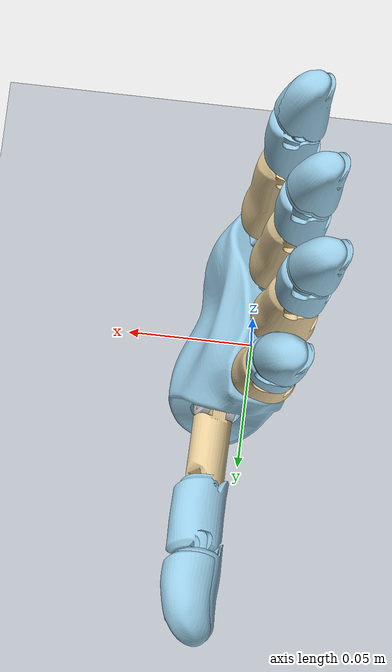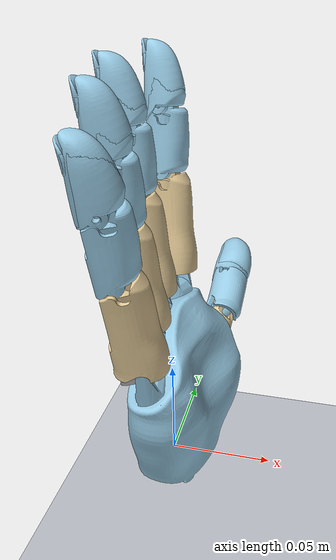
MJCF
<mujoco model="wujihand-right-reach">
  <compiler angle="radian" meshdir="../meshes/right/" />

  <option jacobian="sparse" integrator="RK4" timestep="0.002" solver="Newton" iterations="50" tolerance="1e-10" />
  <visual>
    <global offwidth="1280" offheight="720" />
    <quality offsamples="4" shadowsize="4096" />
    <headlight ambient="0.34 0.34 0.36" diffuse="0.58 0.58 0.58" specular="0.06 0.06 0.06" />
    <map znear="0.01" zfar="20" />
  </visual><default><joint armature="0.0002" damping="0.0" /></default><asset>
    <texture name="reach_sky" type="skybox" builtin="gradient"
             rgb1="0.72 0.80 0.90" rgb2="0.97 0.97 0.98"
             width="512" height="3072" />
    <texture name="reach_floor" type="2d" builtin="checker"
             rgb1="0.70 0.72 0.75" rgb2="0.78 0.80 0.83" width="512" height="512" />
    <material name="reach_floor_mat" texture="reach_floor" texrepeat="18 18"
              specular="0.05" shininess="0.05" reflectance="0.0" />
    <mesh name="right_palm_link" content_type="model/stl" file="right_palm_link.STL" />
    <mesh name="right_finger1_link1" content_type="model/stl" file="right_finger1_link1.STL" />
    <mesh name="right_finger1_link2" content_type="model/stl" file="right_finger1_link2.STL" />
    <mesh name="right_finger1_link3" content_type="model/stl" file="right_finger1_link3.STL" />
    <mesh name="right_finger1_link4" content_type="model/stl" file="right_finger1_link4.STL" />
    <mesh name="right_finger1_tip_link" content_type="model/stl" file="right_finger1_tip_link.STL" />
    <mesh name="right_finger2_link1" content_type="model/stl" file="right_finger2_link1.STL" />
    <mesh name="right_finger2_link2" content_type="model/stl" file="right_finger2_link2.STL" />
    <mesh name="right_finger2_link3" content_type="model/stl" file="right_finger2_link3.STL" />
    <mesh name="right_finger2_link4" content_type="model/stl" file="right_finger2_link4.STL" />
    <mesh name="right_finger2_tip_link" content_type="model/stl" file="right_finger2_tip_link.STL" />
    <mesh name="right_finger3_link1" content_type="model/stl" file="right_finger3_link1.STL" />
    <mesh name="right_finger3_link2" content_type="model/stl" file="right_finger3_link2.STL" />
    <mesh name="right_finger3_link3" content_type="model/stl" file="right_finger3_link3.STL" />
    <mesh name="right_finger3_link4" content_type="model/stl" file="right_finger3_link4.STL" />
    <mesh name="right_finger3_tip_link" content_type="model/stl" file="right_finger3_tip_link.STL" />
    <mesh name="right_finger4_link1" content_type="model/stl" file="right_finger4_link1.STL" />
    <mesh name="right_finger4_link2" content_type="model/stl" file="right_finger4_link2.STL" />
    <mesh name="right_finger4_link3" content_type="model/stl" file="right_finger4_link3.STL" />
    <mesh name="right_finger4_link4" content_type="model/stl" file="right_finger4_link4.STL" />
    <mesh name="right_finger4_tip_link" content_type="model/stl" file="right_finger4_tip_link.STL" />
    <mesh name="right_finger5_link1" content_type="model/stl" file="right_finger5_link1.STL" />
    <mesh name="right_finger5_link2" content_type="model/stl" file="right_finger5_link2.STL" />
    <mesh name="right_finger5_link3" content_type="model/stl" file="right_finger5_link3.STL" />
    <mesh name="right_finger5_link4" content_type="model/stl" file="right_finger5_link4.STL" />
    <mesh name="right_finger5_tip_link" content_type="model/stl" file="right_finger5_tip_link.STL" />
  </asset>

  <worldbody>
    <!-- Visual-only floor pad: contype/conaffinity 0, so it is invisible to
         collision detection and cannot perturb a reach trajectory. -->
    <geom name="reach_floor_visual" type="plane" pos="0 0 -0.12" size="0.6 0.6 0.01"
          material="reach_floor_mat" contype="0" conaffinity="0" group="0" />
    <light name="reach_key" pos="0.35 -0.30 0.60" dir="-0.45 0.40 -0.80"
           diffuse="0.55 0.55 0.55" specular="0.10 0.10 0.10" castshadow="true" />
    <light name="reach_fill" pos="-0.40 0.35 0.45" dir="0.55 -0.45 -0.70"
           diffuse="0.28 0.28 0.30" specular="0.02 0.02 0.02" castshadow="false" />
    <body name="right_palm_link"><inertial pos="-0.00297947143114252 0.000455717622711663 0.0366540864104669" mass="0.16914" quat="-0.01772809 -0.04274722 0.09308295 0.99458230" diaginertia="1.40677446e-04 9.58896475e-05 5.81329061e-05" /><geom type="mesh" contype="0" conaffinity="0" group="1" density="0" rgba="0.6 0.8 0.9 1" mesh="right_palm_link" />
    <geom type="mesh" rgba="0.6 0.8 0.9 1" mesh="right_palm_link" contype="1" conaffinity="1" />
    <body name="right_finger1_link1" pos="0.0084399 0.020587 0.028893" quat="0.682219 -0.617669 0.0805047 -0.382859">
      <inertial pos="-0.00246282 -0.00124281 0.00778015" quat="0.904243 0.21652 0.0443878 -0.365368" mass="0.0075" diaginertia="3.37599e-07 3.01198e-07 2.11203e-07" />
      <joint name="right_finger1_joint1" pos="0 0 0" axis="0 1 0" range="0.0475 1.6033" actuatorfrcrange="-0.4452 0.4452" armature="0.0005" />
      <geom type="mesh" contype="0" conaffinity="0" group="1" density="0" rgba="0.7 0.7 0.7 1" mesh="right_finger1_link1" />
      <geom type="mesh" rgba="0.7 0.7 0.7 1" mesh="right_finger1_link1" contype="0" conaffinity="0" />
      <body name="right_finger1_link2" pos="-0.0047549 -0.0058191 0.014132" quat="0.726252 0.290851 -0.0855912 -0.616958">
        <inertial pos="-0.00116283 1.22067e-05 0.0156645" quat="0.815906 0.0024483 -0.00462559 0.57816" mass="0.0248" diaginertia="2.81725e-06 2.75299e-06 6.79766e-07" />
        <joint name="right_finger1_joint2" pos="0 0 0" axis="0 1 0" range="-0.1387 0.9324" actuatorfrcrange="-0.4259 0.4259" armature="0.0005" />
        <geom type="mesh" contype="0" conaffinity="0" group="1" density="0" rgba="0.9 0.8 0.6 1" mesh="right_finger1_link2" />
        <geom type="mesh" rgba="0.9 0.8 0.6 1" mesh="right_finger1_link2" contype="2" conaffinity="2" />
        <body name="right_finger1_link3" pos="-0.000266705 0.000991502 0.0346656" quat="0.815739 0.0150036 0.0212382 0.577836">
          <inertial pos="-0.00112353 -1.57896e-05 0.0130562" quat="0.999951 0 0.00989566 0" mass="0.0165" diaginertia="1.4604e-06 1.42e-06 4.49604e-07" />
          <joint name="right_finger1_joint3" pos="0 0 0" axis="0 1 0" range="-0.4642 1.5623" actuatorfrcrange="-0.1888 0.1888" />
          <geom type="mesh" contype="0" conaffinity="0" group="1" density="0" rgba="0.6 0.8 0.9 1" mesh="right_finger1_link3" />
          <geom type="mesh" rgba="0.6 0.8 0.9 1" mesh="right_finger1_link3" contype="1" conaffinity="1" />
          <body name="right_finger1_link4" pos="0 0.0002 0.0295">
            <inertial pos="-0.00163662 -0.000195004 0.0113477" quat="0.705265 -0.0511723 -0.0492473 0.705378" mass="0.0206" diaginertia="2.60181e-06 2.58203e-06 7.59817e-07" />
            <joint name="right_finger1_joint4" pos="0 0 0" axis="0 1 0" range="-0.4699 1.5568" actuatorfrcrange="-0.1468 0.1468" />
            <geom type="mesh" contype="0" conaffinity="0" group="1" density="0" rgba="0.6 0.8 0.9 1" mesh="right_finger1_link4" />
            <geom type="mesh" rgba="0.6 0.8 0.9 1" mesh="right_finger1_link4" contype="1" conaffinity="1" />
            <geom pos="-0.00105 -0.0002 0.0313" type="mesh" contype="0" conaffinity="0" group="1" density="0" rgba="0.6 0.8 0.9 1" mesh="right_finger1_tip_link" />
            <geom pos="-0.00105 -0.0002 0.0313" type="mesh" rgba="0.6 0.8 0.9 1" mesh="right_finger1_tip_link" contype="1" conaffinity="1" />
            <site name="finger1_tip" pos="-0.00105 -0.0002 0.0313" size="0.001" rgba="1 0 0 0" />
          </body>
        </body>
      </body>
    </body>
    <body name="right_finger2_link1" pos="-0.0058701 0.029434 0.091917" quat="0.991689 -0.0588295 -0.0292755 -0.110614">
      <inertial pos="-0.00132915 -3.29106e-08 0.000319873" quat="0.92388 0 0.382683 0" mass="0.0032" diaginertia="1.1e-07 7e-08 5e-08" />
      <joint name="right_finger2_joint1" pos="0 0 0" axis="0 1 0" range="-0.1585 1.5604" actuatorfrcrange="-0.6188 0.6188" armature="0.0005" />
      <geom type="mesh" contype="0" conaffinity="0" group="1" density="0" rgba="0.7 0.7 0.7 1" mesh="right_finger2_link1" />
      <geom type="mesh" rgba="0.7 0.7 0.7 1" mesh="right_finger2_link1" contype="0" conaffinity="0" />
      <body name="right_finger2_link2" pos="0.0022 0 0.00400001" quat="0.707107 0 0 0.707107">
        <inertial pos="-4.1182e-07 0.00615772 0.0209112" quat="0.70703 0.0104245 0.0104245 0.70703" mass="0.033" diaginertia="6.34e-06 6.31472e-06 8.85281e-07" />
        <joint name="right_finger2_joint2" pos="0 0 0" axis="0 1 0" range="-0.37 0.37" actuatorfrcrange="-0.1822 0.1822" />
        <geom type="mesh" contype="0" conaffinity="0" group="1" density="0" rgba="0.9 0.8 0.6 1" mesh="right_finger2_link2" />
        <geom type="mesh" rgba="0.9 0.8 0.6 1" mesh="right_finger2_link2" contype="2" conaffinity="2" />
        <body name="right_finger2_link3" pos="0 0.00475028 0.0436177" quat="0.707012 0 0 -0.707202">
          <inertial pos="-0.00112142 4.36128e-06 0.0157628" quat="0.999892 0 -0.0146884 0" mass="0.0165" diaginertia="1.47088e-06 1.44e-06 4.49118e-07" />
          <joint name="right_finger2_joint3" pos="0 0 0" axis="0 1 0" range="-0.4777 1.5485" actuatorfrcrange="-0.2251 0.2251" />
          <geom type="mesh" contype="0" conaffinity="0" group="1" density="0" rgba="0.6 0.8 0.9 1" mesh="right_finger2_link3" />
          <geom type="mesh" rgba="0.6 0.8 0.9 1" mesh="right_finger2_link3" contype="1" conaffinity="1" />
          <body name="right_finger2_link4" pos="0 -0.0002 0.0295">
            <inertial pos="-0.000803077 -1.67703e-05 0.00770942" quat="0.998113 0.0132268 -0.0537103 0.0266451" mass="0.01718" diaginertia="1.58809e-06 1.49171e-06 4.20573e-07" />
            <joint name="right_finger2_joint4" pos="0 0 0" axis="0 1 0" range="-0.4683 1.5753" actuatorfrcrange="-0.217 0.217" />
            <geom type="mesh" contype="0" conaffinity="0" group="1" density="0" rgba="0.6 0.8 0.9 1" mesh="right_finger2_link4" />
            <geom type="mesh" rgba="0.6 0.8 0.9 1" mesh="right_finger2_link4" contype="1" conaffinity="1" />
            <geom pos="-0.00105 0.0002 0.0267" type="mesh" contype="0" conaffinity="0" group="1" density="0" rgba="0.6 0.8 0.9 1" mesh="right_finger2_tip_link" />
            <geom pos="-0.00105 0.0002 0.0267" type="mesh" rgba="0.6 0.8 0.9 1" mesh="right_finger2_tip_link" contype="1" conaffinity="1" />
            <site name="finger2_tip" pos="-0.00105 0.0002 0.0267" size="0.001" rgba="1 0 0 0" />
          </body>
        </body>
      </body>
    </body>
    <body name="right_finger3_link1" pos="-0.01046 0.0074615 0.089544" quat="0.999048 -1.26848e-05 -0.0436192 0.000290547">
      <inertial pos="-0.00132914 3.4987e-09 0.000319937" quat="0.92388 0 0.382683 0" mass="0.0032" diaginertia="1.1e-07 7e-08 5e-08" />
      <joint name="right_finger3_joint1" pos="0 0 0" axis="0 1 0" range="-0.1644 1.5516" actuatorfrcrange="-0.6494 0.6494" armature="0.0005" />
      <geom type="mesh" contype="0" conaffinity="0" group="1" density="0" rgba="0.7 0.7 0.7 1" mesh="right_finger3_link1" />
      <geom type="mesh" rgba="0.7 0.7 0.7 1" mesh="right_finger3_link1" contype="0" conaffinity="0" />
      <body name="right_finger3_link2" pos="0.0022 0 0.00400001" quat="0.707107 0 0 0.707107">
        <inertial pos="-4.16442e-07 0.00615758 0.0209112" quat="0.70703 0.0104245 0.0104245 0.70703" mass="0.033" diaginertia="6.34e-06 6.31472e-06 8.85281e-07" />
        <joint name="right_finger3_joint2" pos="0 0 0" axis="0 1 0" range="-0.37 0.37" actuatorfrcrange="-0.1827 0.1827" />
        <geom type="mesh" contype="0" conaffinity="0" group="1" density="0" rgba="0.9 0.8 0.6 1" mesh="right_finger3_link2" />
        <geom type="mesh" rgba="0.9 0.8 0.6 1" mesh="right_finger3_link2" contype="2" conaffinity="2" />
        <body name="right_finger3_link3" pos="0 0.00475 0.0436177" quat="0.707012 0 0 -0.707202">
          <inertial pos="-0.00112142 4.33099e-06 0.0157628" quat="0.999892 0 -0.0146884 0" mass="0.0165" diaginertia="1.47088e-06 1.44e-06 4.49118e-07" />
          <joint name="right_finger3_joint3" pos="0 0 0" axis="0 1 0" range="-0.4739 1.5512" actuatorfrcrange="-0.2078 0.2078" />
          <geom type="mesh" contype="0" conaffinity="0" group="1" density="0" rgba="0.6 0.8 0.9 1" mesh="right_finger3_link3" />
          <geom type="mesh" rgba="0.6 0.8 0.9 1" mesh="right_finger3_link3" contype="1" conaffinity="1" />
          <body name="right_finger3_link4" pos="0 -0.0002 0.0295">
            <inertial pos="-0.000801144 -1.7052e-05 0.00761196" quat="0.998033 0.0128625 -0.0554378 0.0263073" mass="0.01718" diaginertia="1.55453e-06 1.45763e-06 4.20205e-07" />
            <joint name="right_finger3_joint4" pos="0 0 0" axis="0 1 0" range="-0.4684 1.5745" actuatorfrcrange="-0.2018 0.2018" />
            <geom type="mesh" contype="0" conaffinity="0" group="1" density="0" rgba="0.6 0.8 0.9 1" mesh="right_finger3_link4" />
            <geom type="mesh" rgba="0.6 0.8 0.9 1" mesh="right_finger3_link4" contype="1" conaffinity="1" />
            <geom pos="-0.00104909 0.00020104 0.0267" type="mesh" contype="0" conaffinity="0" group="1" density="0" rgba="0.6 0.8 0.9 1" mesh="right_finger3_tip_link" />
            <geom pos="-0.00104909 0.00020104 0.0267" type="mesh" rgba="0.6 0.8 0.9 1" mesh="right_finger3_tip_link" contype="1" conaffinity="1" />
            <site name="finger3_tip" pos="-0.00104909 0.00020104 0.0267" size="0.001" rgba="1 0 0 0" />
          </body>
        </body>
      </body>
    </body>
    <body name="right_finger4_link1" pos="-0.0076649 -0.013712 0.084429" quat="0.997789 0.0461019 -0.0405884 0.0254002">
      <inertial pos="-0.00132914 1.00475e-08 0.000319948" quat="0.92388 0 0.382683 0" mass="0.0032" diaginertia="1.1e-07 7e-08 5e-08" />
      <joint name="right_finger4_joint1" pos="0 0 0" axis="0 1 0" range="-0.1554 1.5585" actuatorfrcrange="-0.6389 0.6389" armature="0.0005" />
      <geom type="mesh" contype="0" conaffinity="0" group="1" density="0" rgba="0.7 0.7 0.7 1" mesh="right_finger4_link1" />
      <geom type="mesh" rgba="0.7 0.7 0.7 1" mesh="right_finger4_link1" contype="0" conaffinity="0" />
      <body name="right_finger4_link2" pos="0.0022 0 0.00400001" quat="0.707107 0 0 0.707107">
        <inertial pos="-4.16197e-07 0.00615758 0.0209112" quat="0.70703 0.0104245 0.0104245 0.70703" mass="0.033" diaginertia="6.34e-06 6.31472e-06 8.85281e-07" />
        <joint name="right_finger4_joint2" pos="0 0 0" axis="0 1 0" range="-0.37 0.37" actuatorfrcrange="-0.1832 0.1832" />
        <geom type="mesh" contype="0" conaffinity="0" group="1" density="0" rgba="0.9 0.8 0.6 1" mesh="right_finger4_link2" />
        <geom type="mesh" rgba="0.9 0.8 0.6 1" mesh="right_finger4_link2" contype="2" conaffinity="2" />
        <body name="right_finger4_link3" pos="0 0.00475 0.0436177" quat="0.707012 0 0 -0.707202">
          <inertial pos="-0.00112141 4.34937e-06 0.0157628" quat="0.999892 0 -0.0146884 0" mass="0.0165" diaginertia="1.47088e-06 1.44e-06 4.49118e-07" />
          <joint name="right_finger4_joint3" pos="0 0 0" axis="0 1 0" range="-0.4765 1.5487" actuatorfrcrange="-0.2249 0.2249" />
          <geom type="mesh" contype="0" conaffinity="0" group="1" density="0" rgba="0.6 0.8 0.9 1" mesh="right_finger4_link3" />
          <geom type="mesh" rgba="0.6 0.8 0.9 1" mesh="right_finger4_link3" contype="1" conaffinity="1" />
          <body name="right_finger4_link4" pos="0 -0.0002 0.0295">
            <inertial pos="-0.000801413 -2.37496e-05 0.00770949" quat="0.998083 0.0137537 -0.0536109 0.0276923" mass="0.01718" diaginertia="1.58832e-06 1.49181e-06 4.20836e-07" />
            <joint name="right_finger4_joint4" pos="0 0 0" axis="0 1 0" range="-0.4777 1.5634" actuatorfrcrange="-0.2044 0.2044" />
            <geom type="mesh" contype="0" conaffinity="0" group="1" density="0" rgba="0.6 0.8 0.9 1" mesh="right_finger4_link4" />
            <geom type="mesh" rgba="0.6 0.8 0.9 1" mesh="right_finger4_link4" contype="1" conaffinity="1" />
            <geom pos="-0.00105961 0.000190451 0.0267" type="mesh" contype="0" conaffinity="0" group="1" density="0" rgba="0.6 0.8 0.9 1" mesh="right_finger4_tip_link" />
            <geom pos="-0.00105961 0.000190451 0.0267" type="mesh" rgba="0.6 0.8 0.9 1" mesh="right_finger4_tip_link" contype="1" conaffinity="1" />
            <site name="finger4_tip" pos="-0.00105961 0.000190451 0.0267" size="0.001" rgba="1 0 0 0" />
          </body>
        </body>
      </body>
    </body>
    <body name="right_finger5_link1" pos="-0.00226865 -0.0340011 0.0742813" quat="0.990869 0.0993173 -0.0383255 0.0827362">
      <inertial pos="-0.00132914 1.72348e-08 0.000319969" quat="0.92388 0 0.382683 0" mass="0.0032" diaginertia="1.1e-07 7e-08 5e-08" />
      <joint name="right_finger5_joint1" pos="0 0 0" axis="0 1 0" range="-0.1626 1.5585" actuatorfrcrange="-0.6441 0.6441" armature="0.0005" />
      <geom type="mesh" contype="0" conaffinity="0" group="1" density="0" rgba="0.7 0.7 0.7 1" mesh="right_finger5_link1" />
      <geom type="mesh" rgba="0.7 0.7 0.7 1" mesh="right_finger5_link1" contype="0" conaffinity="0" />
      <body name="right_finger5_link2" pos="0.0022 0 0.00400001" quat="0.707107 0 0 0.707107">
        <inertial pos="-4.14939e-07 0.00615759 0.0209112" quat="0.70703 0.0104245 0.0104245 0.70703" mass="0.033" diaginertia="6.34e-06 6.31472e-06 8.85281e-07" />
        <joint name="right_finger5_joint2" pos="0 0 0" axis="0 1 0" range="-0.37 0.37" actuatorfrcrange="-0.1798 0.1798" />
        <geom type="mesh" contype="0" conaffinity="0" group="1" density="0" rgba="0.9 0.8 0.6 1" mesh="right_finger5_link2" />
        <geom type="mesh" rgba="0.9 0.8 0.6 1" mesh="right_finger5_link2" contype="2" conaffinity="2" />
        <body name="right_finger5_link3" pos="0 0.00475 0.0436177" quat="0.707012 0 0 -0.707202">
          <inertial pos="-0.00112141 4.37031e-06 0.0157628" quat="0.999892 0 -0.0146884 0" mass="0.0165" diaginertia="1.47088e-06 1.44e-06 4.49118e-07" />
          <joint name="right_finger5_joint3" pos="0 0 0" axis="0 1 0" range="-0.4768 1.549" actuatorfrcrange="-0.2384 0.2384" />
          <geom type="mesh" contype="0" conaffinity="0" group="1" density="0" rgba="0.6 0.8 0.9 1" mesh="right_finger5_link3" />
          <geom type="mesh" rgba="0.6 0.8 0.9 1" mesh="right_finger5_link3" contype="1" conaffinity="1" />
          <body name="right_finger5_link4" pos="0 -0.0002 0.0295">
            <inertial pos="-0.000805572 -1.62002e-05 0.0077094" quat="0.998111 0.0131911 -0.0538918 0.0263751" mass="0.01718" diaginertia="1.58815e-06 1.49167e-06 4.20431e-07" />
            <joint name="right_finger5_joint4" pos="0 0 0" axis="0 1 0" range="-0.4683 1.5735" actuatorfrcrange="-0.1866 0.1866" />
            <geom type="mesh" contype="0" conaffinity="0" group="1" density="0" rgba="0.6 0.8 0.9 1" mesh="right_finger5_link4" />
            <geom type="mesh" rgba="0.6 0.8 0.9 1" mesh="right_finger5_link4" contype="1" conaffinity="1" />
            <geom pos="-0.00104464 0.00021131 0.0267" type="mesh" contype="0" conaffinity="0" group="1" density="0" rgba="0.6 0.8 0.9 1" mesh="right_finger5_tip_link" />
            <geom pos="-0.00104464 0.00021131 0.0267" type="mesh" rgba="0.6 0.8 0.9 1" mesh="right_finger5_tip_link" contype="1" conaffinity="1" />
            <site name="finger5_tip" pos="-0.00104464 0.00021131 0.0267" size="0.001" rgba="1 0 0 0" />
          </body>
        </body>
      </body>
    </body>
  </body></worldbody>
  <actuator>
    <position name="right_finger1_joint1_actuator" joint="right_finger1_joint1" kp="0.40844710645048043" kv="0.020882010257063675" ctrlrange="0.0475 1.603" forcerange="-0.4452 0.4452" />
    <position name="right_finger1_joint2_actuator" joint="right_finger1_joint2" kp="0.6858601063643346" kv="0.030610939996373314" ctrlrange="-0.1387 0.9324" forcerange="-0.4259 0.4259" />
    <position name="right_finger1_joint3_actuator" joint="right_finger1_joint3" kp="0.2391112196099482" kv="0.010181475050560962" ctrlrange="-0.4642 1.562" forcerange="-0.1888 0.1888" />
    <position name="right_finger1_joint4_actuator" joint="right_finger1_joint4" kp="0.20736128319711747" kv="0.00909698844675045" ctrlrange="-0.4699 1.5568" forcerange="-0.1468 0.1468" />
    <position name="right_finger2_joint1_actuator" joint="right_finger2_joint1" kp="0.37352218155860073" kv="0.01882274330029718" ctrlrange="-0.1585 1.56" forcerange="-0.6188 0.6188" />
    <position name="right_finger2_joint2_actuator" joint="right_finger2_joint2" kp="0.45592448909027794" kv="0.019798167597016643" ctrlrange="-0.37 0.37" forcerange="-0.1822 0.1822" />
    <position name="right_finger2_joint3_actuator" joint="right_finger2_joint3" kp="0.24368366649522863" kv="0.010477031953162727" ctrlrange="-0.4777 1.548" forcerange="-0.2251 0.2251" />
    <position name="right_finger2_joint4_actuator" joint="right_finger2_joint4" kp="0.18026971340925335" kv="0.008240212147903584" ctrlrange="-0.4683 1.575" forcerange="-0.217 0.217" />
    <position name="right_finger3_joint1_actuator" joint="right_finger3_joint1" kp="0.3687093483646485" kv="0.01848622487024593" ctrlrange="-0.1644 1.5516" forcerange="-0.6494 0.6494" />
    <position name="right_finger3_joint2_actuator" joint="right_finger3_joint2" kp="0.4164253443634641" kv="0.018032947229953678" ctrlrange="-0.37 0.37" forcerange="-0.1827 0.1827" />
    <position name="right_finger3_joint3_actuator" joint="right_finger3_joint3" kp="0.22218607502059182" kv="0.009592200014076666" ctrlrange="-0.4739 1.551" forcerange="-0.2078 0.2078" />
    <position name="right_finger3_joint4_actuator" joint="right_finger3_joint4" kp="0.19427606072023446" kv="0.009152994605972402" ctrlrange="-0.4684 1.5745" forcerange="-0.2018 0.2018" />
    <position name="right_finger4_joint1_actuator" joint="right_finger4_joint1" kp="0.35718151495111794" kv="0.018376606800780005" ctrlrange="-0.1554 1.558" forcerange="-0.6389 0.6389" />
    <position name="right_finger4_joint2_actuator" joint="right_finger4_joint2" kp="0.42977315313086895" kv="0.01867700966212433" ctrlrange="-0.37 0.37" forcerange="-0.1832 0.1832" />
    <position name="right_finger4_joint3_actuator" joint="right_finger4_joint3" kp="0.24930151196247122" kv="0.01059512121009555" ctrlrange="-0.4765 1.5487" forcerange="-0.2249 0.2249" />
    <position name="right_finger4_joint4_actuator" joint="right_finger4_joint4" kp="0.2285032688178066" kv="0.009917602877441107" ctrlrange="-0.4777 1.563" forcerange="-0.2044 0.2044" />
    <position name="right_finger5_joint1_actuator" joint="right_finger5_joint1" kp="0.3655325975433942" kv="0.018616960278988272" ctrlrange="-0.1626 1.558" forcerange="-0.6441 0.6441" />
    <position name="right_finger5_joint2_actuator" joint="right_finger5_joint2" kp="0.41393113081120425" kv="0.018732177029667153" ctrlrange="-0.37 0.37" forcerange="-0.1798 0.1798" />
    <position name="right_finger5_joint3_actuator" joint="right_finger5_joint3" kp="0.22729367621965954" kv="0.00951005441616486" ctrlrange="-0.4768 1.549" forcerange="-0.2384 0.2384" />
    <position name="right_finger5_joint4_actuator" joint="right_finger5_joint4" kp="0.1964723550341816" kv="0.009017295241756363" ctrlrange="-0.4683 1.573" forcerange="-0.1866 0.1866" />
  </actuator>
</mujoco>
